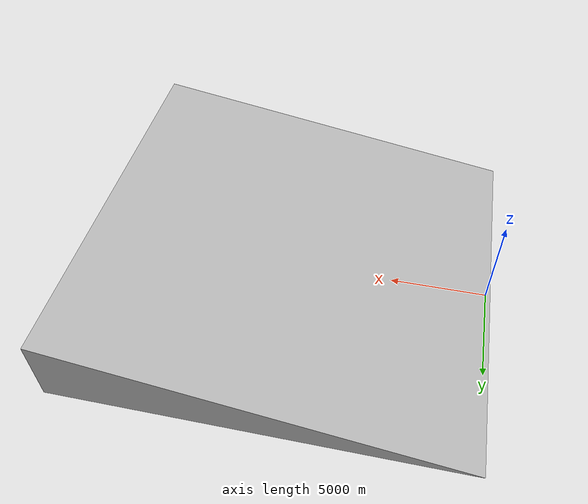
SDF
<?xml version="1.0"?>
<sdf version="1.6">
  <model name="hill">
    <static>true</static>
    <link name="hill_link">
      <visual name="hill_visual">
        <geometry>
          <mesh>
            <uri>model://hill/meshes/hill.stl</uri>
          </mesh>
        </geometry>
      </visual>
      <collision name="hill_collision">
        <geometry>
          <mesh>
            <uri>model://hill/meshes/hill.stl</uri>
          </mesh>
        </geometry>
      </collision>
    </link>
  </model>
</sdf>
